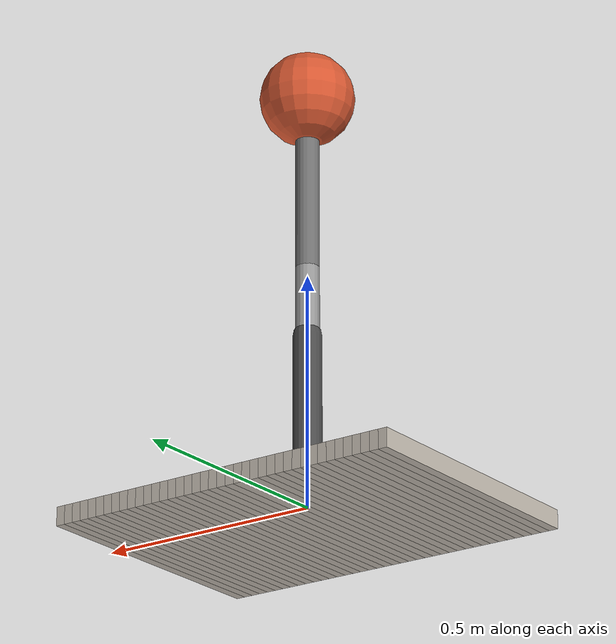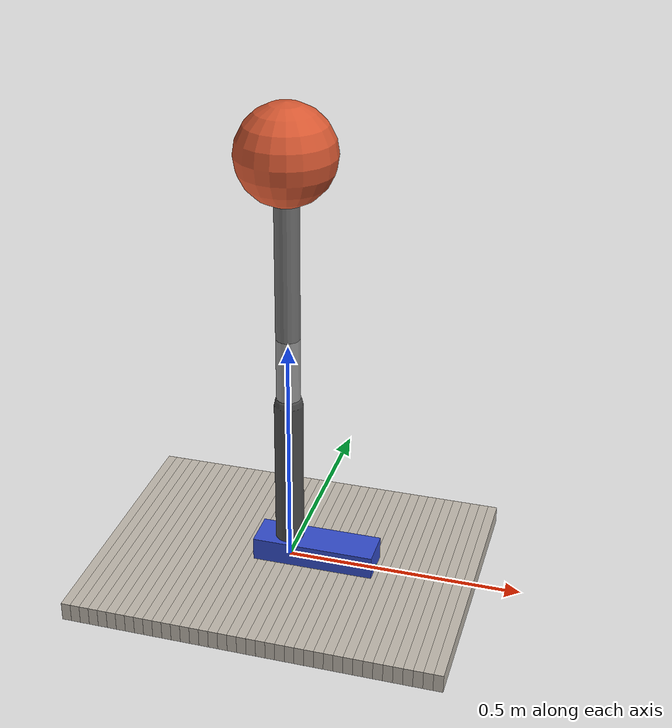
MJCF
<mujoco model="stance_prosthetic_leg">

    <compiler angle="radian"/>

    <option
        timestep="0.001"
        gravity="0 0 -9.81"/>

    <!--
        Native MuJoCo collisions disabled.

        Ground forces will be supplied externally by ground.py
        at heel_site and toe_site.
    -->
    <default>

        <geom
            contype="0"
            conaffinity="0"/>

    </default>

    <worldbody>

        <!-- =====================================================
            LIGHTING
            ===================================================== -->

        <light
            name="main_light"
            pos="0 -2 3"
            dir="0 0 -1"
            diffuse="0.9 0.9 0.9"/>

        <!-- =====================================================
            SIDE CAMERA
            ===================================================== -->

        <camera
            name="side"
            pos="0.40 -2.20 0.55"
            xyaxes="1 0 0 0 0 1"/>

        <body name="ground_strip">
            <geom name="ground_cell_00" type="box"
                  size="0.010 0.30 0.02" pos="-0.390 0 -0.02"
                  contype="0" conaffinity="0"
                  rgba="0.75 0.72 0.68 1"/>
            <geom name="ground_cell_01" type="box"
                  size="0.010 0.30 0.02" pos="-0.370 0 -0.02"
                  contype="0" conaffinity="0"
                  rgba="0.75 0.72 0.68 1"/>
            <geom name="ground_cell_02" type="box"
                  size="0.010 0.30 0.02" pos="-0.350 0 -0.02"
                  contype="0" conaffinity="0"
                  rgba="0.75 0.72 0.68 1"/>
            <geom name="ground_cell_03" type="box"
                  size="0.010 0.30 0.02" pos="-0.330 0 -0.02"
                  contype="0" conaffinity="0"
                  rgba="0.75 0.72 0.68 1"/>
            <geom name="ground_cell_04" type="box"
                  size="0.010 0.30 0.02" pos="-0.310 0 -0.02"
                  contype="0" conaffinity="0"
                  rgba="0.75 0.72 0.68 1"/>
            <geom name="ground_cell_05" type="box"
                  size="0.010 0.30 0.02" pos="-0.290 0 -0.02"
                  contype="0" conaffinity="0"
                  rgba="0.75 0.72 0.68 1"/>
            <geom name="ground_cell_06" type="box"
                  size="0.010 0.30 0.02" pos="-0.270 0 -0.02"
                  contype="0" conaffinity="0"
                  rgba="0.75 0.72 0.68 1"/>
            <geom name="ground_cell_07" type="box"
                  size="0.010 0.30 0.02" pos="-0.250 0 -0.02"
                  contype="0" conaffinity="0"
                  rgba="0.75 0.72 0.68 1"/>
            <geom name="ground_cell_08" type="box"
                  size="0.010 0.30 0.02" pos="-0.230 0 -0.02"
                  contype="0" conaffinity="0"
                  rgba="0.75 0.72 0.68 1"/>
            <geom name="ground_cell_09" type="box"
                  size="0.010 0.30 0.02" pos="-0.210 0 -0.02"
                  contype="0" conaffinity="0"
                  rgba="0.75 0.72 0.68 1"/>
            <geom name="ground_cell_10" type="box"
                  size="0.010 0.30 0.02" pos="-0.190 0 -0.02"
                  contype="0" conaffinity="0"
                  rgba="0.75 0.72 0.68 1"/>
            <geom name="ground_cell_11" type="box"
                  size="0.010 0.30 0.02" pos="-0.170 0 -0.02"
                  contype="0" conaffinity="0"
                  rgba="0.75 0.72 0.68 1"/>
            <geom name="ground_cell_12" type="box"
                  size="0.010 0.30 0.02" pos="-0.150 0 -0.02"
                  contype="0" conaffinity="0"
                  rgba="0.75 0.72 0.68 1"/>
            <geom name="ground_cell_13" type="box"
                  size="0.010 0.30 0.02" pos="-0.130 0 -0.02"
                  contype="0" conaffinity="0"
                  rgba="0.75 0.72 0.68 1"/>
            <geom name="ground_cell_14" type="box"
                  size="0.010 0.30 0.02" pos="-0.110 0 -0.02"
                  contype="0" conaffinity="0"
                  rgba="0.75 0.72 0.68 1"/>
            <geom name="ground_cell_15" type="box"
                  size="0.010 0.30 0.02" pos="-0.090 0 -0.02"
                  contype="0" conaffinity="0"
                  rgba="0.75 0.72 0.68 1"/>
            <geom name="ground_cell_16" type="box"
                  size="0.010 0.30 0.02" pos="-0.070 0 -0.02"
                  contype="0" conaffinity="0"
                  rgba="0.75 0.72 0.68 1"/>
            <geom name="ground_cell_17" type="box"
                  size="0.010 0.30 0.02" pos="-0.050 0 -0.02"
                  contype="0" conaffinity="0"
                  rgba="0.75 0.72 0.68 1"/>
            <geom name="ground_cell_18" type="box"
                  size="0.010 0.30 0.02" pos="-0.030 0 -0.02"
                  contype="0" conaffinity="0"
                  rgba="0.75 0.72 0.68 1"/>
            <geom name="ground_cell_19" type="box"
                  size="0.010 0.30 0.02" pos="-0.010 0 -0.02"
                  contype="0" conaffinity="0"
                  rgba="0.75 0.72 0.68 1"/>
            <geom name="ground_cell_20" type="box"
                  size="0.010 0.30 0.02" pos="0.010 0 -0.02"
                  contype="0" conaffinity="0"
                  rgba="0.75 0.72 0.68 1"/>
            <geom name="ground_cell_21" type="box"
                  size="0.010 0.30 0.02" pos="0.030 0 -0.02"
                  contype="0" conaffinity="0"
                  rgba="0.75 0.72 0.68 1"/>
            <geom name="ground_cell_22" type="box"
                  size="0.010 0.30 0.02" pos="0.050 0 -0.02"
                  contype="0" conaffinity="0"
                  rgba="0.75 0.72 0.68 1"/>
            <geom name="ground_cell_23" type="box"
                  size="0.010 0.30 0.02" pos="0.070 0 -0.02"
                  contype="0" conaffinity="0"
                  rgba="0.75 0.72 0.68 1"/>
            <geom name="ground_cell_24" type="box"
                  size="0.010 0.30 0.02" pos="0.090 0 -0.02"
                  contype="0" conaffinity="0"
                  rgba="0.75 0.72 0.68 1"/>
            <geom name="ground_cell_25" type="box"
                  size="0.010 0.30 0.02" pos="0.110 0 -0.02"
                  contype="0" conaffinity="0"
                  rgba="0.75 0.72 0.68 1"/>
            <geom name="ground_cell_26" type="box"
                  size="0.010 0.30 0.02" pos="0.130 0 -0.02"
                  contype="0" conaffinity="0"
                  rgba="0.75 0.72 0.68 1"/>
            <geom name="ground_cell_27" type="box"
                  size="0.010 0.30 0.02" pos="0.150 0 -0.02"
                  contype="0" conaffinity="0"
                  rgba="0.75 0.72 0.68 1"/>
            <geom name="ground_cell_28" type="box"
                  size="0.010 0.30 0.02" pos="0.170 0 -0.02"
                  contype="0" conaffinity="0"
                  rgba="0.75 0.72 0.68 1"/>
            <geom name="ground_cell_29" type="box"
                  size="0.010 0.30 0.02" pos="0.190 0 -0.02"
                  contype="0" conaffinity="0"
                  rgba="0.75 0.72 0.68 1"/>
            <geom name="ground_cell_30" type="box"
                  size="0.010 0.30 0.02" pos="0.210 0 -0.02"
                  contype="0" conaffinity="0"
                  rgba="0.75 0.72 0.68 1"/>
            <geom name="ground_cell_31" type="box"
                  size="0.010 0.30 0.02" pos="0.230 0 -0.02"
                  contype="0" conaffinity="0"
                  rgba="0.75 0.72 0.68 1"/>
            <geom name="ground_cell_32" type="box"
                  size="0.010 0.30 0.02" pos="0.250 0 -0.02"
                  contype="0" conaffinity="0"
                  rgba="0.75 0.72 0.68 1"/>
            <geom name="ground_cell_33" type="box"
                  size="0.010 0.30 0.02" pos="0.270 0 -0.02"
                  contype="0" conaffinity="0"
                  rgba="0.75 0.72 0.68 1"/>
            <geom name="ground_cell_34" type="box"
                  size="0.010 0.30 0.02" pos="0.290 0 -0.02"
                  contype="0" conaffinity="0"
                  rgba="0.75 0.72 0.68 1"/>
            <geom name="ground_cell_35" type="box"
                  size="0.010 0.30 0.02" pos="0.310 0 -0.02"
                  contype="0" conaffinity="0"
                  rgba="0.75 0.72 0.68 1"/>
            <geom name="ground_cell_36" type="box"
                  size="0.010 0.30 0.02" pos="0.330 0 -0.02"
                  contype="0" conaffinity="0"
                  rgba="0.75 0.72 0.68 1"/>
            <geom name="ground_cell_37" type="box"
                  size="0.010 0.30 0.02" pos="0.350 0 -0.02"
                  contype="0" conaffinity="0"
                  rgba="0.75 0.72 0.68 1"/>
            <geom name="ground_cell_38" type="box"
                  size="0.010 0.30 0.02" pos="0.370 0 -0.02"
                  contype="0" conaffinity="0"
                  rgba="0.75 0.72 0.68 1"/>
            <geom name="ground_cell_39" type="box"
                  size="0.010 0.30 0.02" pos="0.390 0 -0.02"
                  contype="0" conaffinity="0"
                  rgba="0.75 0.72 0.68 1"/>
        </body>

        <!-- =====================================================
             FOOT
             ===================================================== -->

        <body
            name="foot"
            pos="0 0 0.025">

            <!-- DOF 1: horizontal translation -->

            <joint
                name="foot_x"
                type="slide"
                axis="1 0 0"
                damping="0.1"/>

            <!-- DOF 2: vertical translation -->

            <joint
                name="foot_z"
                type="slide"
                axis="0 0 1"
                damping="1.0"/>

            <!-- DOF 3: global leg / foot pitch -->

            <joint
                name="foot_pitch"
                type="hinge"
                axis="0 1 0"
                damping="0.1"/>

            <geom
                name="foot_geom"
                type="box"
                size="0.13 0.04 0.025"
                pos="0.06 0 0"
                mass="0.8"
                rgba="0.2 0.3 0.8 1"/>

            <!-- Heel ground-force application point -->

            <site
                name="heel_site"
                pos="-0.07 0 -0.025"
                size="0.008"
                rgba="1 0 0 1"/>

            <!-- Toe ground-force application point -->

            <site
                name="toe_site"
                pos="0.19 0 -0.025"
                size="0.008"
                rgba="0 1 0 1"/>

            <!-- =================================================
                 SHANK
                 ================================================= -->

            <body
                name="shank"
                pos="0 0 0.025">

                <!--
                    DOF 4: powered ankle

                    +/- 0.35 rad ≈ +/- 20 degrees
                -->

                <joint
                    name="ankle_hinge"
                    type="hinge"
                    axis="0 1 0"
                    range="-0.35 0.35"
                    damping="0.1"/>

                <!--
                    Shank:
                    length = 0.32 m
                    mass   = 1.2 kg
                -->

                <geom
                    name="shank_geom"
                    type="capsule"
                    fromto="0 0 0 0 0 0.32"
                    size="0.03"
                    mass="1.2"
                    rgba="0.3 0.3 0.3 1"/>

                <!-- =================================================
                     PASSIVE PYLON
                     ================================================= -->

                <body
                    name="pylon"
                    pos="0 0 0.32">

                    <!--
                        DOF 5: passive axial compliance
                    -->

                    <joint
                        name="pylon_slide"
                        type="slide"
                        axis="0 0 1"
                        range="-0.06 0.005"
                        stiffness="120000"
                        damping="800"
                        springref="0"/>

                    <!--
                        Pylon:
                        length = 0.15 m
                        mass   = 0.4 kg
                    -->

                    <geom
                        name="pylon_geom"
                        type="capsule"
                        fromto="0 0 0 0 0 0.15"
                        size="0.025"
                        mass="0.4"
                        rgba="0.6 0.6 0.6 1"/>

                    <!-- =================================================
                         UPPER LEG
                         ================================================= -->

                    <body
                        name="upper_leg"
                        pos="0 0 0.15">

                        <geom
                            name="upper_leg_geom"
                            type="capsule"
                            fromto="0 0 0 0 0 0.38"
                            size="0.025"
                            mass="0.01"
                            rgba="0.45 0.45 0.45 1"/>

                        <!-- =============================================
                             HUMAN BODY POINT MASS
                             ============================================= -->

                        <body
                            name="body_mass"
                            pos="0 0 0.38">

                            <geom
                                name="body_mass_geom"
                                type="sphere"
                                size="0.10"
                                mass="70.0"
                                rgba="0.85 0.35 0.20 1"/>

                        </body>

                    </body>

                </body>

            </body>

        </body>

    </worldbody>

    <!-- =========================================================
         ACTUATOR
         ========================================================= -->

    <actuator>

        <!--
            Only actuated DOF.

            Python/Gym calculates:

            tau = K(theta_d - theta) - B theta_dot
        -->

        <motor
            name="ankle_motor"
            joint="ankle_hinge"
            gear="1"
            ctrlrange="-150 150"/>

    </actuator>

    <!-- =========================================================
         SENSORS
         ========================================================= -->

    <sensor>

        <!-- Floating base -->

        <jointpos
            name="foot_x_pos"
            joint="foot_x"/>

        <jointpos
            name="foot_z_pos"
            joint="foot_z"/>

        <jointpos
            name="foot_pitch_pos"
            joint="foot_pitch"/>

        <!-- Ankle -->

        <jointpos
            name="ankle_pos"
            joint="ankle_hinge"/>

        <jointvel
            name="ankle_vel"
            joint="ankle_hinge"/>

        <!-- Pylon -->

        <jointpos
            name="pylon_pos"
            joint="pylon_slide"/>

        <jointvel
            name="pylon_vel"
            joint="pylon_slide"/>

        <!-- Ground interface -->

        <framepos
            name="heel_pos"
            objtype="site"
            objname="heel_site"/>

        <framepos
            name="toe_pos"
            objtype="site"
            objname="toe_site"/>

    </sensor>

</mujoco>
